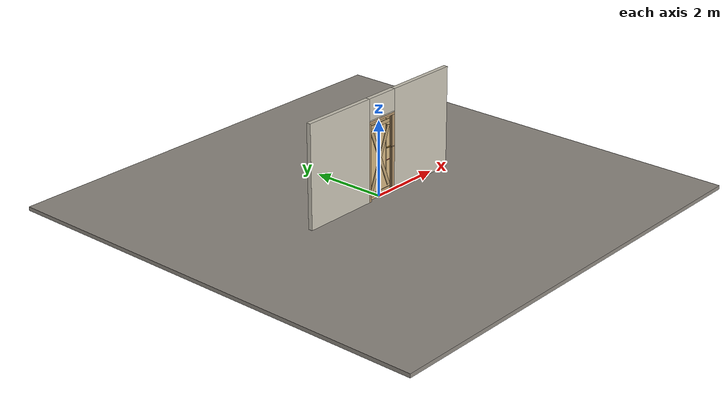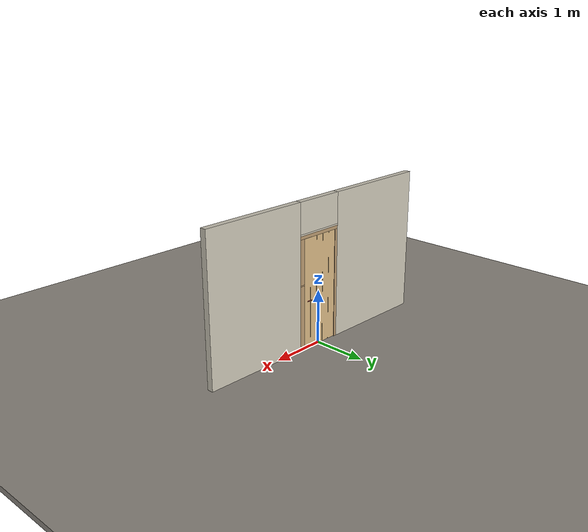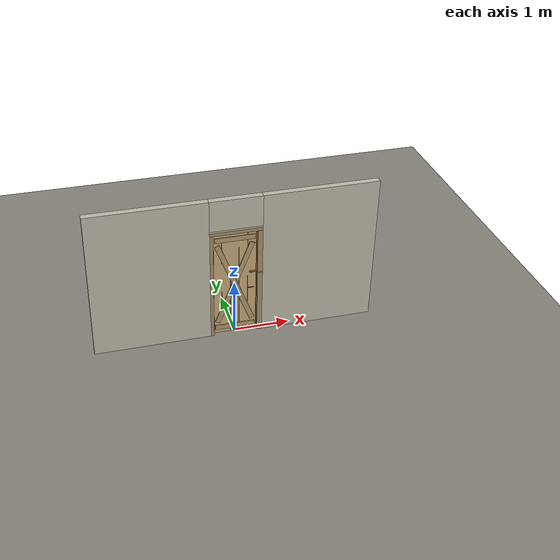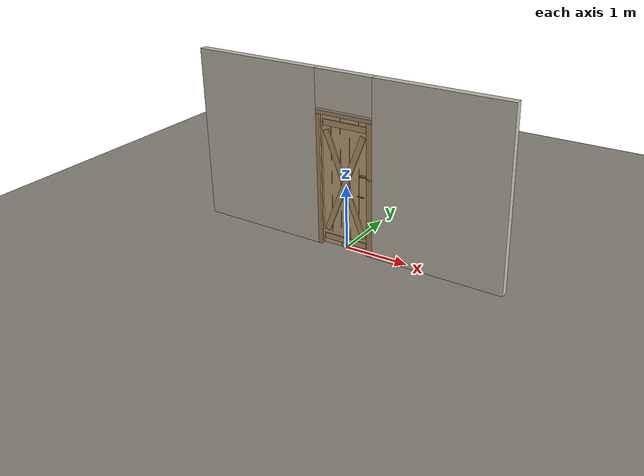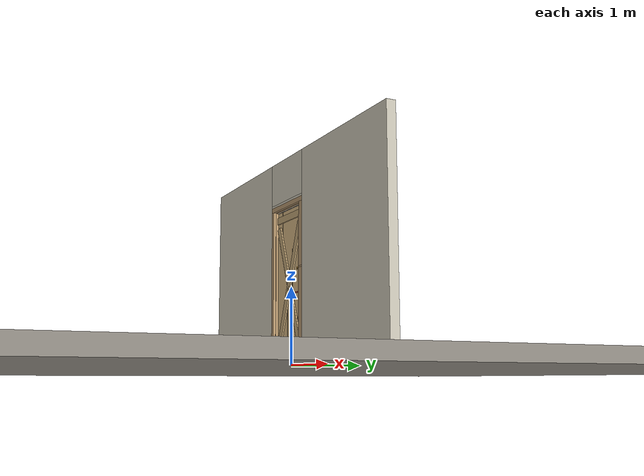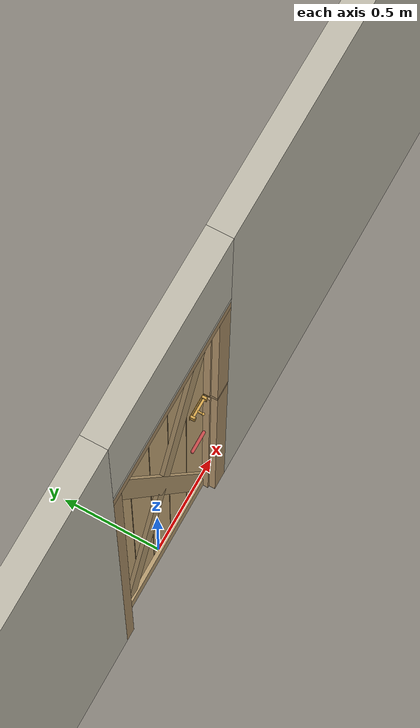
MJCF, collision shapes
<?xml version="1.0" ?>
<mujoco model="db0096_swing_single_full">
  <compiler angle="radian" meshdir="../../hardware" texturedir="../../textures" autolimits="true" inertiafromgeom="false"/>
  <option timestep="0.002" integrator="implicitfast" cone="elliptic" impratio="10" noslip_iterations="3">
    <flag multiccd="enable"/>
  </option>
  <size memory="16M"/>
  <default>
    <geom condim="4" solref="0.005 1" solimp="0.95 0.99 0.001"/>
    <joint solreflimit="0.005 1" solimplimit="0.95 0.99 0.001"/>
    <tendon solreflimit="0.005 1"/>
    <equality solref="0.002 1"/>
  </default>
  <visual>
    <headlight ambient="0.4 0.4 0.4" diffuse="0.7 0.7 0.7" specular="0.2 0.2 0.2"/>
    <quality shadowsize="4096"/>
    <map znear="0.01" zfar="60"/>
  </visual>
  <asset>
    <mesh name="hinge_2af0f4d6ca" file="hinge_2af0f4d6ca.obj"/>
    <mesh name="hinge_jamb_c0c0a62ada" file="hinge_jamb_c0c0a62ada.obj"/>
    <mesh name="ring_cc5c941a8a" file="ring_cc5c941a8a.obj"/>
    <material name="mat_floor" rgba="0.55 0.53 0.5 1" specular="0.2" shininess="0.15" reflectance="0"/>
    <material name="mat_wall" rgba="0.78 0.76 0.7 1" specular="0.2" shininess="0.1" reflectance="0"/>
    <material name="mat_leaf" rgba="0.82 0.7 0.5 1" specular="0.2" shininess="0.45" reflectance="0"/>
    <material name="mat_leaf_brace" rgba="0.738 0.63 0.45 1" specular="0.2" shininess="0.2" reflectance="0"/>
    <material name="mat_hinge" rgba="0.65 0.66 0.68 1" specular="0.74" shininess="0.5" reflectance="0.36"/>
    <material name="mat_op_wrought_iron" rgba="0.08 0.08 0.09 1" specular="0.56" shininess="0.25" reflectance="0.24"/>
    <material name="mat_op_brass" rgba="0.85 0.66 0.3 1" specular="0.8" shininess="0.75" reflectance="0.4"/>
    <material name="mat_frame" rgba="0.7 0.58 0.42 1" specular="0.2" shininess="0.5" reflectance="0"/>
    <material name="mat_seal" rgba="0.1 0.1 0.1 1" specular="0.2" shininess="0.1" reflectance="0"/>
    <texture name="skybox" type="skybox" builtin="gradient" rgb1="0.6 0.7 0.85" rgb2="0.9 0.92 0.95" width="256" height="256"/>
  </asset>
  <worldbody>
    <light name="sun" pos="1.5 -2.5 4" dir="-0.3 0.5 -0.8" directional="true" diffuse="0.8 0.8 0.8" specular="0.3 0.3 0.3" castshadow="true"/>
    <light name="fill" pos="-1.5 2.5 3" dir="0.3 -0.5 -0.7" directional="true" diffuse="0.35 0.35 0.4" castshadow="false"/>
    <camera name="robot_view" pos="0 -2.570688 1.734312" xyaxes="1 0 0 0 0.26963 0.962964" fovy="52"/>
    <camera name="far_view" pos="0 2.513687 1.734312" xyaxes="-1 0 0 0 -0.26963 0.962964" fovy="52"/>
    <camera name="iso" pos="1.932062 -2.163938 2.141063" xyaxes="0.741536 0.670913 0 -0.242917 0.268487 0.932151" fovy="46"/>
    <camera name="detail_handle" pos="0.455 -0.854 1.185" xyaxes="0.97561 0.219512 0 -0.070934 0.315262 0.94635" fovy="38"/>
    <geom name="floor" type="box" size="6 6 0.05" pos="0 0 -0.05" material="mat_floor" group="0" contype="1" conaffinity="1" friction="0.8 0.005 0.0001" density="2400"/>
    <geom name="wall_left" type="box" size="1.0275 0.0575 1.35" pos="-1.4725 -0.0285 1.35" material="mat_wall" group="0" contype="1" conaffinity="1" friction="0.6 0.005 0.0001" density="800"/>
    <geom name="wall_right" type="box" size="1.0125 0.0575 1.35" pos="1.4875 -0.0285 1.35" material="mat_wall" group="0" contype="1" conaffinity="1" friction="0.6 0.005 0.0001" density="800"/>
    <geom name="wall_header" type="box" size="0.46 0.0575 0.2825" pos="0.015 -0.0285 2.4175" material="mat_wall" group="0" contype="1" conaffinity="1" friction="0.6 0.005 0.0001" density="800"/>
    <geom name="hinge_0_jamb" type="mesh" mesh="hinge_jamb_c0c0a62ada" pos="-0.382 0.029 0.259" quat="0 1 0 0" material="mat_hinge" group="1" contype="0" conaffinity="0" density="7850"/>
    <geom name="hinge_1_jamb" type="mesh" mesh="hinge_jamb_c0c0a62ada" pos="-0.382 0.029 1.025" quat="0 1 0 0" material="mat_hinge" group="1" contype="0" conaffinity="0" density="7850"/>
    <geom name="hinge_2_jamb" type="mesh" mesh="hinge_jamb_c0c0a62ada" pos="-0.382 0.029 1.861" quat="0 1 0 0" material="mat_hinge" group="1" contype="0" conaffinity="0" density="7850"/>
    <geom name="leaf_aux_bolt_keeper_b" type="box" size="0.014 0.003 0.0005" pos="0.3845 -0.034 1.202" quat="-0.5 -0.5 0.5 0.5" material="mat_op_brass" group="1" contype="0" conaffinity="0" density="7800"/>
    <geom name="leaf_aux_bolt_keeper_l" type="box" size="0.003 0.01 0.0005" pos="0.3845 -0.023 1.215" quat="-0.5 -0.5 0.5 0.5" material="mat_op_brass" group="1" contype="0" conaffinity="0" density="7800"/>
    <geom name="leaf_aux_bolt_keeper_t" type="box" size="0.014 0.003 0.0005" pos="0.3845 -0.034 1.228" quat="-0.5 -0.5 0.5 0.5" material="mat_op_brass" group="1" contype="0" conaffinity="0" density="7800"/>
    <geom name="leaf_aux_bolt_keeper_r" type="box" size="0.003 0.01 0.0005" pos="0.3845 -0.045 1.215" quat="-0.5 -0.5 0.5 0.5" material="mat_op_brass" group="1" contype="0" conaffinity="0" density="7800"/>
    <geom name="jamb_hinge" type="box" size="0.03 0.0575 1.0225" pos="-0.415 -0.0285 1.0225" material="mat_frame" group="0" contype="1" conaffinity="1" friction="0.6 0.005 0.0001" density="750"/>
    <geom name="strike_1215_wall_n" type="box" size="0.045 0.022 0.01" pos="0.43 -0.064 1.215" material="mat_frame" group="0" contype="1" conaffinity="1" friction="0.6 0.005 0.0001" density="750"/>
    <geom name="strike_1215_wall_p" type="box" size="0.045 0.0275 0.01" pos="0.43 0.0015 1.215" material="mat_frame" group="0" contype="1" conaffinity="1" friction="0.6 0.005 0.0001" density="750"/>
    <geom name="strike_1215_back" type="box" size="0.024 0.008 0.01" pos="0.451 -0.034 1.215" material="mat_frame" group="0" contype="1" conaffinity="1" friction="0.6 0.005 0.0001" density="750"/>
    <geom name="jamb_strike_0" type="box" size="0.045 0.0575 0.6025" pos="0.43 -0.0285 0.6025" material="mat_frame" group="0" contype="1" conaffinity="1" friction="0.6 0.005 0.0001" density="750"/>
    <geom name="jamb_strike_1" type="box" size="0.045 0.0575 0.41" pos="0.43 -0.0285 1.635" material="mat_frame" group="0" contype="1" conaffinity="1" friction="0.6 0.005 0.0001" density="750"/>
    <geom name="jamb_head" type="box" size="0.46 0.0575 0.03" pos="0.015 -0.0285 2.075" material="mat_frame" group="0" contype="1" conaffinity="1" friction="0.6 0.005 0.0001" density="750"/>
    <geom name="head_stud" type="box" size="0.46 0.0575 0.015" pos="0.015 -0.0285 2.12" material="mat_wall" group="0" contype="1" conaffinity="1" friction="0.6 0.005 0.0001" density="500"/>
    <geom name="stop_hinge" type="box" size="0.0055 0.016 1.0225" pos="-0.3795 -0.0385 1.0225" material="mat_frame" group="0" contype="1" conaffinity="1" friction="0.6 0.005 0.0001" density="750"/>
    <geom name="stop_strike" type="box" size="0.0055 0.016 0.5965" pos="0.3795 -0.0385 0.5965" material="mat_frame" group="0" contype="1" conaffinity="1" friction="0.6 0.005 0.0001" density="750"/>
    <geom name="stop_strike_1" type="box" size="0.0055 0.016 0.404" pos="0.3795 -0.0385 1.641" material="mat_frame" group="0" contype="1" conaffinity="1" friction="0.6 0.005 0.0001" density="750"/>
    <geom name="stop_head" type="box" size="0.385 0.016 0.0055" pos="0 -0.0385 2.0395" material="mat_frame" group="0" contype="1" conaffinity="1" friction="0.6 0.005 0.0001" density="750"/>
    <geom name="seal_hinge" type="box" size="0.004 0.002 1.0225" pos="-0.382 -0.024 1.0225" material="mat_seal" group="1" contype="0" conaffinity="0" density="1100"/>
    <geom name="seal_strike" type="box" size="0.004 0.002 0.5965" pos="0.382 -0.024 0.5965" material="mat_seal" group="1" contype="0" conaffinity="0" density="1100"/>
    <geom name="seal_strike_1" type="box" size="0.004 0.002 0.404" pos="0.382 -0.024 1.641" material="mat_seal" group="1" contype="0" conaffinity="0" density="1100"/>
    <geom name="seal_head" type="box" size="0.365 0.002 0.008" pos="0 -0.024 2.033" material="mat_seal" group="1" contype="0" conaffinity="0" density="1100"/>
    <site name="approach_point" pos="0 -1.5 0" quat="1 0 0 0" size="0.05" rgba="0.2 0.9 0.2 0.5" group="4"/>
    <site name="goal_point" pos="0 1.5 0" quat="1 0 0 0" size="0.05" rgba="0.2 0.9 0.2 0.5" group="4"/>
    <site name="door_plane_center" pos="0 0 1.0225" quat="1 0 0 0" size="0.02" rgba="0.2 0.9 0.2 0.5" group="4"/>
    <body name="leaf" pos="-0.385 0 0">
      <inertial pos="0.385865 0.000108 1.024501" mass="28.409774" quat="0.499641 0.500978 0.499 -0.500379" diaginertia="1.452486142 9.552133652 10.990922822"/>
      <joint name="leaf_hinge" type="hinge" axis="0 0 1" pos="0.003 0.029 0" limited="true" range="0 1.396263" solreflimit="0.02 1" damping="0.173726" frictionloss="1.689516" armature="0.02"/>
      <geom name="leaf_slab" type="box" size="0.381 0.022 1.016" pos="0.384 0 1.025" material="mat_leaf" group="0" contype="1" conaffinity="1" friction="0.35 0.005 0.0001" density="1"/>
      <geom name="leaf_plank_gap_1" type="box" size="0.002 0.023 1.006" pos="0.1554 0 1.025" material="mat_leaf_brace" group="1" contype="0" conaffinity="0" density="1"/>
      <geom name="leaf_plank_gap_2" type="box" size="0.002 0.023 1.006" pos="0.3078 0 1.025" material="mat_leaf_brace" group="1" contype="0" conaffinity="0" density="1"/>
      <geom name="leaf_plank_gap_3" type="box" size="0.002 0.023 1.006" pos="0.4602 0 1.025" material="mat_leaf_brace" group="1" contype="0" conaffinity="0" density="1"/>
      <geom name="leaf_plank_gap_4" type="box" size="0.002 0.023 1.006" pos="0.6126 0 1.025" material="mat_leaf_brace" group="1" contype="0" conaffinity="0" density="1"/>
      <geom name="leaf_batten_12" type="box" size="0.351 0.01 0.045" pos="0.384 -0.032 0.129" material="mat_leaf_brace" group="1" contype="0" conaffinity="0" density="1"/>
      <geom name="leaf_batten_192" type="box" size="0.351 0.01 0.045" pos="0.384 -0.032 1.921" material="mat_leaf_brace" group="1" contype="0" conaffinity="0" density="1"/>
      <geom name="leaf_brace_z" type="box" size="0.843793 0.01 0.045" pos="0.384 -0.032 1.025" quat="0.826509 0 -0.562924 0" material="mat_leaf_brace" group="1" contype="0" conaffinity="0" density="1"/>
      <geom name="leaf_brace_x" type="box" size="0.843793 0.01 0.045" pos="0.384 -0.032 1.025" quat="0.826509 0 0.562924 0" material="mat_leaf_brace" group="1" contype="0" conaffinity="0" density="1"/>
      <geom name="hinge_0" type="mesh" mesh="hinge_2af0f4d6ca" pos="0.003 0.029 0.259" quat="0 1 0 0" material="mat_hinge" group="1" contype="0" conaffinity="0" density="7850"/>
      <geom name="hinge_1" type="mesh" mesh="hinge_2af0f4d6ca" pos="0.003 0.029 1.025" quat="0 1 0 0" material="mat_hinge" group="1" contype="0" conaffinity="0" density="7850"/>
      <geom name="hinge_2" type="mesh" mesh="hinge_2af0f4d6ca" pos="0.003 0.029 1.861" quat="0 1 0 0" material="mat_hinge" group="1" contype="0" conaffinity="0" density="7850"/>
      <geom name="leaf_ring_pull_n" type="mesh" mesh="ring_cc5c941a8a" pos="0.66 -0.022 0.965" quat="0.707107 0.707107 0 0" material="mat_op_wrought_iron" group="1" contype="0" conaffinity="0" density="3000"/>
      <geom name="leaf_ring_pull_col_n" type="capsule" size="0.008 0.05" pos="0.66 -0.054 0.905" quat="0.707107 0 0.707107 0" material="mat_op_wrought_iron" group="3" contype="1" conaffinity="1" rgba="0.8 0.3 0.3 0.25" friction="0.7 0.01 0.0001" density="3000"/>
      <geom name="leaf_ring_pull_p" type="mesh" mesh="ring_cc5c941a8a" pos="0.66 0.022 0.965" quat="-0.707107 0.707107 0 0" material="mat_op_wrought_iron" group="1" contype="0" conaffinity="0" density="3000"/>
      <geom name="leaf_ring_pull_col_p" type="capsule" size="0.008 0.05" pos="0.66 0.054 0.905" quat="0.707107 0 0.707107 0" material="mat_op_wrought_iron" group="3" contype="1" conaffinity="1" rgba="0.8 0.3 0.3 0.25" friction="0.7 0.01 0.0001" density="3000"/>
      <geom name="leaf_aux_bolt_plate" type="box" size="0.0595 0.019 0.001" pos="0.6975 -0.023 1.215" quat="0.707107 0.707107 0 0" material="mat_op_brass" group="1" contype="0" conaffinity="0" density="7800"/>
      <geom name="leaf_aux_bolt_guide_0_leg_n" type="box" size="0.006 0.002 0.0125" pos="0.749 -0.0345 1.204" quat="0.707107 0.707107 0 0" material="mat_op_brass" group="1" contype="0" conaffinity="0" density="7800"/>
      <geom name="leaf_aux_bolt_guide_0_leg_p" type="box" size="0.006 0.002 0.0125" pos="0.749 -0.0345 1.226" quat="0.707107 0.707107 0 0" material="mat_op_brass" group="1" contype="0" conaffinity="0" density="7800"/>
      <geom name="leaf_aux_bolt_guide_0_bridge" type="box" size="0.006 0.013 0.002" pos="0.749 -0.045 1.215" quat="0.707107 0.707107 0 0" material="mat_op_brass" group="1" contype="0" conaffinity="0" density="7800"/>
      <geom name="leaf_aux_bolt_guide_1_leg_n" type="box" size="0.006 0.002 0.0125" pos="0.648 -0.0345 1.204" quat="0.707107 0.707107 0 0" material="mat_op_brass" group="1" contype="0" conaffinity="0" density="7800"/>
      <geom name="leaf_aux_bolt_guide_1_leg_p" type="box" size="0.006 0.002 0.0125" pos="0.648 -0.0345 1.226" quat="0.707107 0.707107 0 0" material="mat_op_brass" group="1" contype="0" conaffinity="0" density="7800"/>
      <geom name="leaf_aux_bolt_guide_1_bridge" type="box" size="0.006 0.013 0.002" pos="0.648 -0.045 1.215" quat="0.707107 0.707107 0 0" material="mat_op_brass" group="1" contype="0" conaffinity="0" density="7800"/>
      <site name="leaf_ring_pull_grip_n" pos="0.66 -0.054 0.905" quat="1 0 0 0" size="0.012" rgba="0.2 0.9 0.2 0.5" group="4"/>
      <site name="leaf_ring_pull_grip_p" pos="0.66 0.054 0.905" quat="1 0 0 0" size="0.012" rgba="0.2 0.9 0.2 0.5" group="4"/>
      <site name="leaf_edge_mid" pos="0.765 0 1.016" quat="1 0 0 0" size="0.02" rgba="0.2 0.9 0.2 0.5" group="4"/>
      <body name="leaf_aux_bolt" pos="0.765 -0.034 1.215">
        <inertial pos="-0.068563 -0.00492 0" mass="0.111784" quat="0.998595 0 0 0.05299" diaginertia="0.000012212 0.000071985 0.000082309"/>
        <joint name="leaf_aux_bolt_slide" type="slide" axis="-1 0 0" limited="true" range="0 0.045" damping="1" frictionloss="1" armature="0.1" ref="0.045"/>
        <geom name="leaf_aux_bolt_rod" type="capsule" size="0.006 0.044" pos="-0.065 0 0" quat="0.707107 0 0.707107 0" material="mat_op_brass" group="0" contype="1" conaffinity="1" friction="0.6 0.005 0.0001" density="7850"/>
        <geom name="leaf_aux_bolt_knob" type="capsule" size="0.005 0.01" pos="-0.08 -0.015 0" quat="0.707107 0.707107 0 0" material="mat_op_brass" group="0" contype="1" conaffinity="1" friction="0.6 0.005 0.0001" density="7850"/>
        <geom name="leaf_aux_bolt_knob_end" type="sphere" size="0.00675" pos="-0.08 -0.03 0" material="mat_op_brass" group="1" contype="0" conaffinity="0" density="7850"/>
        <site name="leaf_aux_bolt_grip" pos="-0.08 -0.034 0" quat="1 0 0 0" size="0.012" rgba="0.2 0.9 0.2 0.5" group="4"/>
      </body>
    </body>
  </worldbody>
  <sensor>
    <jointpos name="leaf_hinge_pos" joint="leaf_hinge"/>
    <jointvel name="leaf_hinge_vel" joint="leaf_hinge"/>
    <jointpos name="leaf_aux_bolt_slide_pos" joint="leaf_aux_bolt_slide"/>
    <jointvel name="leaf_aux_bolt_slide_vel" joint="leaf_aux_bolt_slide"/>
  </sensor>
</mujoco>
